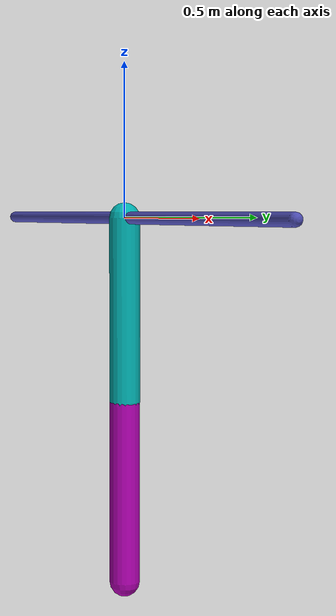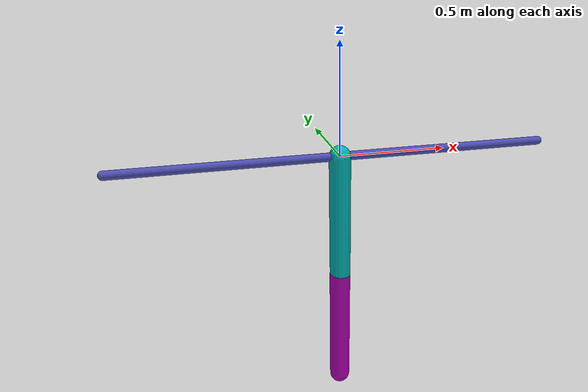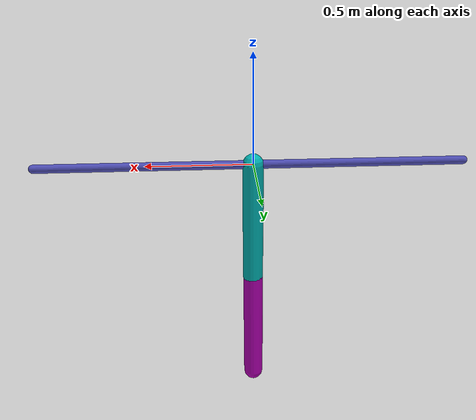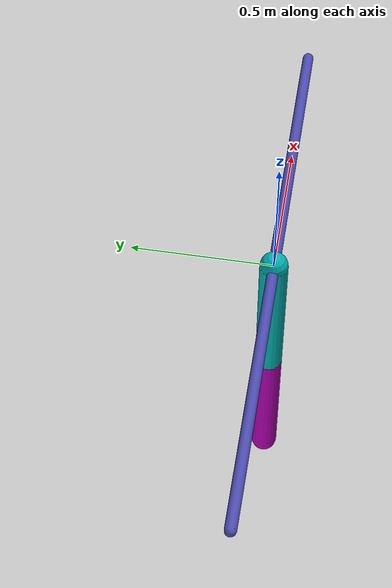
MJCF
<?xml version="1.0" encoding="utf-8"?>

<mujoco model="double_pendulum">
    <!--Infer masses and inertial masses from geometry-->
	<compiler coordinate="local" inertiafromgeom="true"/>

    <!--Global defaults-->
	<default>
		<joint armature="0" damping="0.05" limited="false"/>
		<geom contype="0" friction="1 0.1 0.1" rgba="0.7 0.7 0 1"/>
	</default>

    <!--Simulator options-->
	<option gravity="0 0 -9.81" integrator="RK4" timestep="0.01"/>
	<size nstack="3000"/>

    <!--Define bodies-->
    <worldbody>
        <geom name="bar" pos="0 0 0" quat="0.707 0 0.707 0" rgba="0.3 0.3 0.7 1" size="0.02 1" type="capsule"/>
        <body name="pole1" pos="0 0 0">
            <joint axis="0 1 0" name="hinge1" pos="0 0 0" type="hinge"/>
            <geom fromto="0 0 0 0.001 0 -0.6" name="pole1" rgba="0 0.7 0.7 1" size="0.05" type="capsule"/>
            <body name="pole2" pos="0 0 -0.6">
                <joint axis="0 1 0" name="hinge2" pos="0 0 0" type="hinge"/>
                <geom fromto="0 0 0 -0.001 0 -0.6" name="pole2" rgba="0.7 0 0.7 1" size="0.05" type="capsule"/>
            </body>
        </body>
    </worldbody>

    <!--Define actuators-->
    <actuator>
        <motor joint="hinge1" name="hinge1" ctrlrange="-400 400"/> <!--Torque control-->
        <motor joint="hinge2" name="hinge2" ctrlrange="-100 100"/> <!--Torque control-->
    </actuator>
</mujoco>
